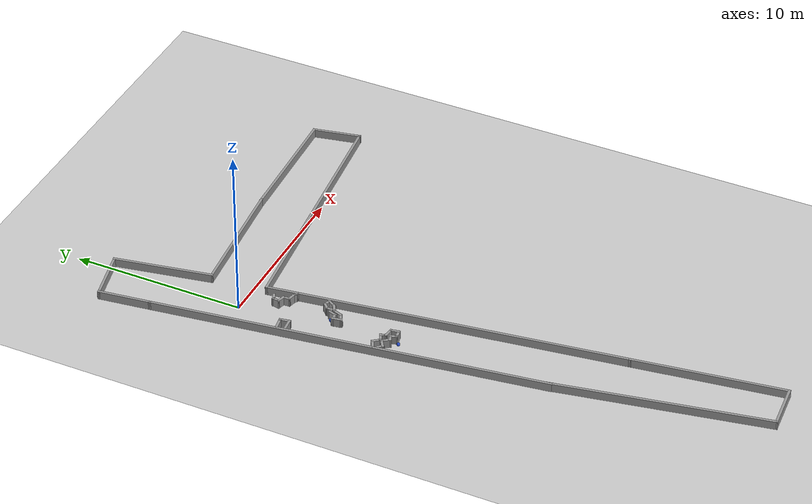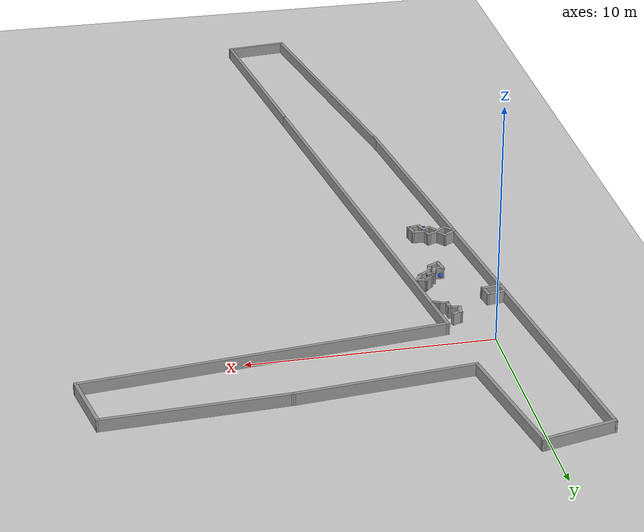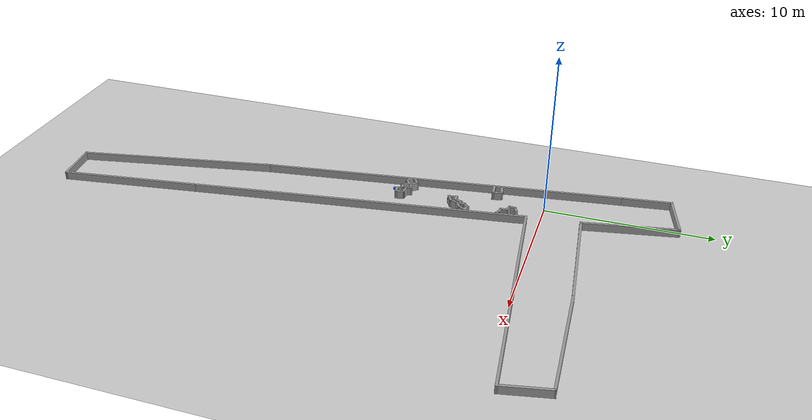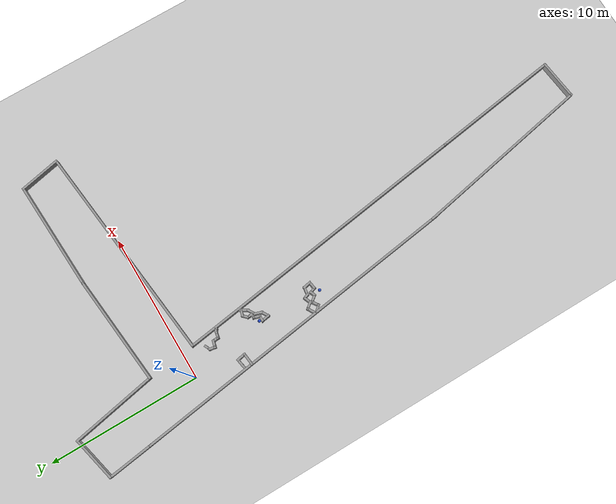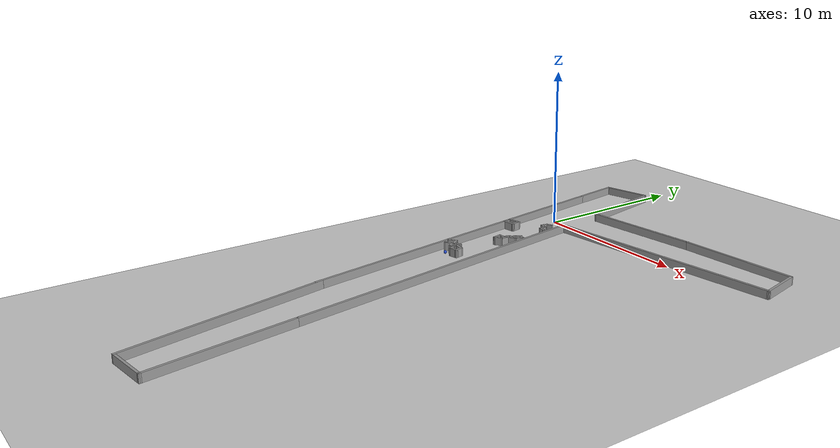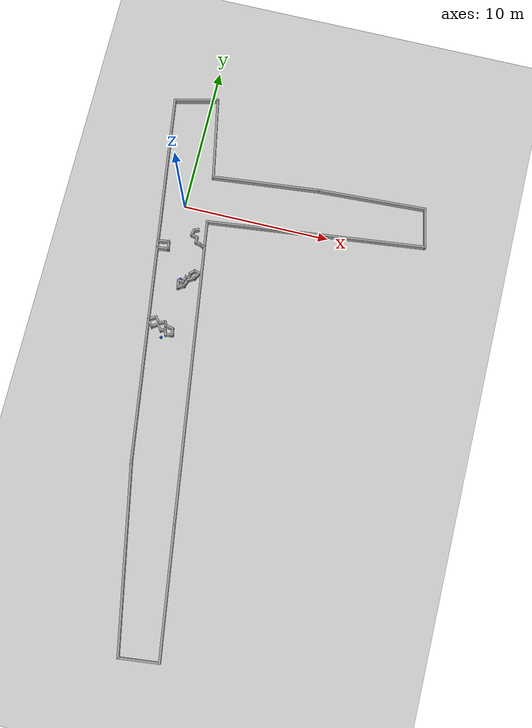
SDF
<?xml version="1.0"?>
<sdf version="1.4">
<world name="racecar_tunnel">

<light type="directional" name="sun">
    <cast_shadows>true</cast_shadows>
    <pose>0 0 10 0 0 0</pose>
    <diffuse>0.8 0.8 0.8 1</diffuse>
    <specular>0.2 0.2 0.2 1</specular>
    <attenuation>
        <range>1000</range>
        <constant>0.9</constant>
        <linear>0.01</linear>
        <quadratic>0.001</quadratic>
    </attenuation>
    <direction>-0.5 0.1 -0.9</direction>
    <spot>
        <inner_angle>0</inner_angle>
        <outer_angle>0</outer_angle>
        <falloff>0</falloff>
    </spot>
</light>

  <gui>
    <camera name='main'>
      <pose>0 0 10 0 1.571 0</pose>
    </camera>
  </gui>

  <model name="ground_plane">
    <static>true</static>
    <link name="link">
      <collision name="collision">
        <geometry>
          <plane>
            <normal>0 0 1</normal>
            <size>150 150</size>
          </plane>
        </geometry>
        <surface>
          <friction>
            <ode>
              <mu>100</mu>
              <mu2>50</mu2>
            </ode>
          </friction>
        </surface>
      </collision>
      <visual name="visual">
        <cast_shadows>false</cast_shadows>
        <geometry>
          <plane>
            <normal>0 0 1</normal>
            <size>150 150</size>
          </plane>
        </geometry>
        <material>Gazebo/Black</material>
      </visual>
    </link>
  </model>

  <model name="sphere_1">
    <static>true</static>
    <pose>1 -5.1 0.216 0 0 0</pose>
    <link name="link">
      <collision name="collision">
        <geometry>
          <sphere>
            <radius>0.1</radius>
          </sphere>
        </geometry>
      </collision>
      <visual name="visual">
        <cast_shadows>false</cast_shadows>
        <geometry>
          <sphere>
            <radius>0.1</radius>
          </sphere>
        </geometry>
        <material>
          <script>
            <uri>file://media/materials/scripts/gazebo.material</uri>
            <name>Gazebo/Blue</name>
          </script>
          <ambient>1 0 1 1</ambient>
          <diffuse>1 0 1 1</diffuse>
          <specular>1 0 1 1</specular>
        </material>
      </visual>
    </link>
  </model>

  <model name="sphere_2">
    <static>true</static>
    <pose>0.73 -9.3 0.216 0 0 0</pose>
    <link name="link">
      <collision name="collision">
        <geometry>
          <sphere>
            <radius>0.1</radius>
          </sphere>
        </geometry>
      </collision>
      <visual name="visual">
        <cast_shadows>false</cast_shadows>
        <geometry>
          <sphere>
            <radius>0.1</radius>
          </sphere>
        </geometry>
        <material>
          <script>
            <uri>file://media/materials/scripts/gazebo.material</uri>
            <name>Gazebo/Blue</name>
          </script>
          <ambient>1 0 1 1</ambient>
          <diffuse>1 0 1 1</diffuse>
          <specular>1 0 1 1</specular>
        </material>
      </visual>
    </link>
  </model>

  <include>
    <uri>model://tunnel_genie</uri>
    <pose>7 -11 0 0 0 0</pose>
  </include>

</world>
</sdf>

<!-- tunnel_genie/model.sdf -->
<sdf version='1.6'>
  <model name='tunnel_genie'>
    <pose frame=''>3.65079 -5.49106 0 0 -0 0</pose>
    <link name='Wall_1'>
      <collision name='Wall_1_Collision'>
        <geometry>
          <box>
            <size>22.7901 0.15 0.5</size>
          </box>
        </geometry>
        <pose frame=''>0 0 0.25 0 -0 0</pose>
      </collision>
      <visual name='Wall_1_Visual'>
        <pose frame=''>0 0 0.25 0 -0 0</pose>
        <geometry>
          <box>
            <size>22.7901 0.15 0.5</size>
          </box>
        </geometry>
        <material>
          <script>
            <uri>file://media/materials/scripts/gazebo.material</uri>
            <name>Gazebo/Grey</name>
          </script>
          <ambient>1 1 1 1</ambient>
        </material>
        <meta>
          <layer>0</layer>
        </meta>
      </visual>
      <pose frame=''>-7.58251 4.10765 0 0 -0 -1.43268</pose>
    </link>
    <link name='Wall_10'>
      <collision name='Wall_10_Collision'>
        <geometry>
          <box>
            <size>15.0098 0.15 0.5</size>
          </box>
        </geometry>
        <pose frame=''>0 0 0.25 0 -0 0</pose>
      </collision>
      <visual name='Wall_10_Visual'>
        <pose frame=''>0 0 0.25 0 -0 0</pose>
        <geometry>
          <box>
            <size>15.0098 0.15 0.5</size>
          </box>
        </geometry>
        <material>
          <script>
            <uri>file://media/materials/scripts/gazebo.material</uri>
            <name>Gazebo/Grey</name>
          </script>
          <ambient>1 1 1 1</ambient>
        </material>
        <meta>
          <layer>0</layer>
        </meta>
      </visual>
      <pose frame=''>2.15127 11.0356 0 0 -0 -3.02956</pose>
    </link>
    <link name='Wall_11'>
      <collision name='Wall_11_Collision'>
        <geometry>
          <box>
            <size>20.6591 0.15 0.5</size>
          </box>
        </geometry>
        <pose frame=''>0 0 0.25 0 -0 0</pose>
      </collision>
      <visual name='Wall_11_Visual'>
        <pose frame=''>0 0 0.25 0 -0 0</pose>
        <geometry>
          <box>
            <size>20.6591 0.15 0.5</size>
          </box>
        </geometry>
        <material>
          <script>
            <uri>file://media/materials/scripts/gazebo.material</uri>
            <name>Gazebo/Grey</name>
          </script>
          <ambient>1 1 1 1</ambient>
        </material>
        <meta>
          <layer>0</layer>
        </meta>
      </visual>
      <pose frame=''>-3.78617 0.052913 0 0 -0 -1.42932</pose>
    </link>
    <link name='Wall_12'>
      <collision name='Wall_12_Collision'>
        <geometry>
          <box>
            <size>8.80295 0.15 0.5</size>
          </box>
        </geometry>
        <pose frame=''>0 0 0.25 0 -0 0</pose>
      </collision>
      <visual name='Wall_12_Visual'>
        <pose frame=''>0 0 0.25 0 -0 0</pose>
        <geometry>
          <box>
            <size>8.80295 0.15 0.5</size>
          </box>
        </geometry>
        <material>
          <script>
            <uri>file://media/materials/scripts/gazebo.material</uri>
            <name>Gazebo/Grey</name>
          </script>
          <ambient>1 1 1 1</ambient>
        </material>
        <meta>
          <layer>0</layer>
        </meta>
      </visual>
      <pose frame=''>-1.72289 -14.3814 0 0 -0 -1.42761</pose>
    </link>
    <link name='Wall_13'>
      <collision name='Wall_13_Collision'>
        <geometry>
          <box>
            <size>2.78513 0.15 0.5</size>
          </box>
        </geometry>
        <pose frame=''>0 0 0.25 0 -0 0</pose>
      </collision>
      <visual name='Wall_13_Visual'>
        <pose frame=''>0 0 0.25 0 -0 0</pose>
        <geometry>
          <box>
            <size>2.78513 0.15 0.5</size>
          </box>
        </geometry>
        <material>
          <script>
            <uri>file://media/materials/scripts/gazebo.material</uri>
            <name>Gazebo/Grey</name>
          </script>
          <ambient>1 1 1 1</ambient>
        </material>
        <meta>
          <layer>0</layer>
        </meta>
      </visual>
      <pose frame=''>-2.41558 -18.804 0 0 -0 -3.03486</pose>
    </link>
    <link name='Wall_14'>
      <collision name='Wall_14_Collision'>
        <geometry>
          <box>
            <size>12.5378 0.15 0.5</size>
          </box>
        </geometry>
        <pose frame=''>0 0 0.25 0 -0 0</pose>
      </collision>
      <visual name='Wall_14_Visual'>
        <pose frame=''>0 0 0.25 0 -0 0</pose>
        <geometry>
          <box>
            <size>12.5378 0.15 0.5</size>
          </box>
        </geometry>
        <material>
          <script>
            <uri>file://media/materials/scripts/gazebo.material</uri>
            <name>Gazebo/Grey</name>
          </script>
          <ambient>1 1 1 1</ambient>
        </material>
        <meta>
          <layer>0</layer>
        </meta>
      </visual>
      <pose frame=''>-4.89535 -12.8619 0 0 -0 1.76079</pose>
    </link>
    <link name='Wall_16'>
      <collision name='Wall_16_Collision'>
        <geometry>
          <box>
            <size>0.5 0.15 0.5</size>
          </box>
        </geometry>
        <pose frame=''>0 0 0.25 0 -0 0</pose>
      </collision>
      <visual name='Wall_16_Visual'>
        <pose frame=''>0 0 0.25 0 -0 0</pose>
        <geometry>
          <box>
            <size>0.5 0.15 0.5</size>
          </box>
        </geometry>
        <material>
          <script>
            <uri>file://media/materials/scripts/gazebo.material</uri>
            <name>Gazebo/Grey</name>
          </script>
          <ambient>1 1 1 1</ambient>
        </material>
        <meta>
          <layer>0</layer>
        </meta>
      </visual>
      <pose frame=''>-5.03206 6.593 0 0 -0 2.87979</pose>
    </link>
    <link name='Wall_17'>
      <collision name='Wall_17_Collision'>
        <geometry>
          <box>
            <size>0.5 0.15 0.5</size>
          </box>
        </geometry>
        <pose frame=''>0 0 0.25 0 -0 0</pose>
      </collision>
      <visual name='Wall_17_Visual'>
        <pose frame=''>0 0 0.25 0 -0 0</pose>
        <geometry>
          <box>
            <size>0.5 0.15 0.5</size>
          </box>
        </geometry>
        <material>
          <script>
            <uri>file://media/materials/scripts/gazebo.material</uri>
            <name>Gazebo/Grey</name>
          </script>
          <ambient>1 1 1 1</ambient>
        </material>
        <meta>
          <layer>0</layer>
        </meta>
      </visual>
      <pose frame=''>-5.32484 6.51455 0 0 -0 -2.35619</pose>
    </link>
    <link name='Wall_18'>
      <collision name='Wall_18_Collision'>
        <geometry>
          <box>
            <size>0.25 0.15 0.5</size>
          </box>
        </geometry>
        <pose frame=''>0 0 0.25 0 -0 0</pose>
      </collision>
      <visual name='Wall_18_Visual'>
        <pose frame=''>0 0 0.25 0 -0 0</pose>
        <geometry>
          <box>
            <size>0.25 0.15 0.5</size>
          </box>
        </geometry>
        <material>
          <script>
            <uri>file://media/materials/scripts/gazebo.material</uri>
            <name>Gazebo/Grey</name>
          </script>
          <ambient>1 1 1 1</ambient>
        </material>
        <meta>
          <layer>0</layer>
        </meta>
      </visual>
      <pose frame=''>-5.44858 6.34081 0 0 -0 -1.5708</pose>
    </link>
    <link name='Wall_19'>
      <collision name='Wall_19_Collision'>
        <geometry>
          <box>
            <size>0.330317 0.15 0.5</size>
          </box>
        </geometry>
        <pose frame=''>0 0 0.25 0 -0 0</pose>
      </collision>
      <visual name='Wall_19_Visual'>
        <pose frame=''>0 0 0.25 0 -0 0</pose>
        <geometry>
          <box>
            <size>0.330317 0.15 0.5</size>
          </box>
        </geometry>
        <material>
          <script>
            <uri>file://media/materials/scripts/gazebo.material</uri>
            <name>Gazebo/Grey</name>
          </script>
          <ambient>1 1 1 1</ambient>
        </material>
        <meta>
          <layer>0</layer>
        </meta>
      </visual>
      <pose frame=''>-5.44014 6.20105 0 0 -0 -1.47701</pose>
    </link>
    <link name='Wall_20'>
      <collision name='Wall_20_Collision'>
        <geometry>
          <box>
            <size>0.374825 0.15 0.5</size>
          </box>
        </geometry>
        <pose frame=''>0 0 0.25 0 -0 0</pose>
      </collision>
      <visual name='Wall_20_Visual'>
        <pose frame=''>0 0 0.25 0 -0 0</pose>
        <geometry>
          <box>
            <size>0.374825 0.15 0.5</size>
          </box>
        </geometry>
        <material>
          <script>
            <uri>file://media/materials/scripts/gazebo.material</uri>
            <name>Gazebo/Grey</name>
          </script>
          <ambient>1 1 1 1</ambient>
        </material>
        <meta>
          <layer>0</layer>
        </meta>
      </visual>
      <pose frame=''>-5.54411 6.11128 0 0 -0 3.14159</pose>
    </link>
    <link name='Wall_21'>
      <collision name='Wall_21_Collision'>
        <geometry>
          <box>
            <size>0.55157 0.15 0.5</size>
          </box>
        </geometry>
        <pose frame=''>0 0 0.25 0 -0 0</pose>
      </collision>
      <visual name='Wall_21_Visual'>
        <pose frame=''>0 0 0.25 0 -0 0</pose>
        <geometry>
          <box>
            <size>0.55157 0.15 0.5</size>
          </box>
        </geometry>
        <material>
          <script>
            <uri>file://media/materials/scripts/gazebo.material</uri>
            <name>Gazebo/Grey</name>
          </script>
          <ambient>1 1 1 1</ambient>
        </material>
        <meta>
          <layer>0</layer>
        </meta>
      </visual>
      <pose frame=''>-5.71603 5.91952 0 0 -0 -1.87172</pose>
    </link>
    <link name='Wall_22'>
      <collision name='Wall_22_Collision'>
        <geometry>
          <box>
            <size>0.480625 0.15 0.5</size>
          </box>
        </geometry>
        <pose frame=''>0 0 0.25 0 -0 0</pose>
      </collision>
      <visual name='Wall_22_Visual'>
        <pose frame=''>0 0 0.25 0 -0 0</pose>
        <geometry>
          <box>
            <size>0.480625 0.15 0.5</size>
          </box>
        </geometry>
        <material>
          <script>
            <uri>file://media/materials/scripts/gazebo.material</uri>
            <name>Gazebo/Grey</name>
          </script>
          <ambient>1 1 1 1</ambient>
        </material>
        <meta>
          <layer>0</layer>
        </meta>
      </visual>
      <pose frame=''>-5.94086 5.72776 0 0 -0 3.14159</pose>
    </link>
    <link name='Wall_23'>
      <collision name='Wall_23_Collision'>
        <geometry>
          <box>
            <size>0.619627 0.15 0.5</size>
          </box>
        </geometry>
        <pose frame=''>0 0 0.25 0 -0 0</pose>
      </collision>
      <visual name='Wall_23_Visual'>
        <pose frame=''>0 0 0.25 0 -0 0</pose>
        <geometry>
          <box>
            <size>0.619627 0.15 0.5</size>
          </box>
        </geometry>
        <material>
          <script>
            <uri>file://media/materials/scripts/gazebo.material</uri>
            <name>Gazebo/Grey</name>
          </script>
          <ambient>1 1 1 1</ambient>
        </material>
        <meta>
          <layer>0</layer>
        </meta>
      </visual>
      <pose frame=''>-6.06649 5.49632 0 0 -0 -1.40102</pose>
    </link>
    <link name='Wall_24'>
      <collision name='Wall_24_Collision'>
        <geometry>
          <box>
            <size>0.594565 0.15 0.5</size>
          </box>
        </geometry>
        <pose frame=''>0 0 0.25 0 -0 0</pose>
      </collision>
      <visual name='Wall_24_Visual'>
        <pose frame=''>0 0 0.25 0 -0 0</pose>
        <geometry>
          <box>
            <size>0.594565 0.15 0.5</size>
          </box>
        </geometry>
        <material>
          <script>
            <uri>file://media/materials/scripts/gazebo.material</uri>
            <name>Gazebo/Grey</name>
          </script>
          <ambient>1 1 1 1</ambient>
        </material>
        <meta>
          <layer>0</layer>
        </meta>
      </visual>
      <pose frame=''>-5.83506 5.3773 0 0 -0 0.530216</pose>
    </link>
    <link name='Wall_25'>
      <collision name='Wall_25_Collision'>
        <geometry>
          <box>
            <size>0.597506 0.15 0.5</size>
          </box>
        </geometry>
        <pose frame=''>0 0 0.25 0 -0 0</pose>
      </collision>
      <visual name='Wall_25_Visual'>
        <pose frame=''>0 0 0.25 0 -0 0</pose>
        <geometry>
          <box>
            <size>0.597506 0.15 0.5</size>
          </box>
        </geometry>
        <material>
          <script>
            <uri>file://media/materials/scripts/gazebo.material</uri>
            <name>Gazebo/Grey</name>
          </script>
          <ambient>1 1 1 1</ambient>
        </material>
        <meta>
          <layer>0</layer>
        </meta>
      </visual>
      <pose frame=''>-5.57056 5.70131 0 0 -0 1.2397</pose>
    </link>
    <link name='Wall_26'>
      <collision name='Wall_26_Collision'>
        <geometry>
          <box>
            <size>0.630852 0.15 0.5</size>
          </box>
        </geometry>
        <pose frame=''>0 0 0.25 0 -0 0</pose>
      </collision>
      <visual name='Wall_26_Visual'>
        <pose frame=''>0 0 0.25 0 -0 0</pose>
        <geometry>
          <box>
            <size>0.630852 0.15 0.5</size>
          </box>
        </geometry>
        <material>
          <script>
            <uri>file://media/materials/scripts/gazebo.material</uri>
            <name>Gazebo/Grey</name>
          </script>
          <ambient>1 1 1 1</ambient>
        </material>
        <meta>
          <layer>0</layer>
        </meta>
      </visual>
      <pose frame=''>-5.29283 6.03855 0 0 -0 0.549853</pose>
    </link>
    <link name='Wall_27'>
      <collision name='Wall_27_Collision'>
        <geometry>
          <box>
            <size>0.612686 0.15 0.5</size>
          </box>
        </geometry>
        <pose frame=''>0 0 0.25 0 -0 0</pose>
      </collision>
      <visual name='Wall_27_Visual'>
        <pose frame=''>0 0 0.25 0 -0 0</pose>
        <geometry>
          <box>
            <size>0.612686 0.15 0.5</size>
          </box>
        </geometry>
        <material>
          <script>
            <uri>file://media/materials/scripts/gazebo.material</uri>
            <name>Gazebo/Grey</name>
          </script>
          <ambient>1 1 1 1</ambient>
        </material>
        <meta>
          <layer>0</layer>
        </meta>
      </visual>
      <pose frame=''>-4.96882 6.36256 0 0 -0 1.03038</pose>
    </link>
    <link name='Wall_29'>
      <collision name='Wall_29_Collision'>
        <geometry>
          <box>
            <size>0.894839 0.15 0.5</size>
          </box>
        </geometry>
        <pose frame=''>0 0 0.25 0 -0 0</pose>
      </collision>
      <visual name='Wall_29_Visual'>
        <pose frame=''>0 0 0.25 0 -0 0</pose>
        <geometry>
          <box>
            <size>0.894839 0.15 0.5</size>
          </box>
        </geometry>
        <material>
          <script>
            <uri>file://media/materials/scripts/gazebo.material</uri>
            <name>Gazebo/Grey</name>
          </script>
          <ambient>1 1 1 1</ambient>
        </material>
        <meta>
          <layer>0</layer>
        </meta>
      </visual>
      <pose frame=''>-7.69317 7.68506 0 0 -0 0.106736</pose>
    </link>
    <link name='Wall_3'>
      <collision name='Wall_3_Collision'>
        <geometry>
          <box>
            <size>3.12202 0.15 0.5</size>
          </box>
        </geometry>
        <pose frame=''>0 0 0.25 0 -0 0</pose>
      </collision>
      <visual name='Wall_3_Visual'>
        <pose frame=''>0 0 0.25 0 -0 0</pose>
        <geometry>
          <box>
            <size>3.12202 0.15 0.5</size>
          </box>
        </geometry>
        <material>
          <script>
            <uri>file://media/materials/scripts/gazebo.material</uri>
            <name>Gazebo/Grey</name>
          </script>
          <ambient>1 1 1 1</ambient>
        </material>
        <meta>
          <layer>0</layer>
        </meta>
      </visual>
      <pose frame=''>-9.34004 16.7925 0 0 -0 1.7051</pose>
    </link>
    <link name='Wall_30'>
      <collision name='Wall_30_Collision'>
        <geometry>
          <box>
            <size>0.674017 0.15 0.5</size>
          </box>
        </geometry>
        <pose frame=''>0 0 0.25 0 -0 0</pose>
      </collision>
      <visual name='Wall_30_Visual'>
        <pose frame=''>0 0 0.25 0 -0 0</pose>
        <geometry>
          <box>
            <size>0.674017 0.15 0.5</size>
          </box>
        </geometry>
        <material>
          <script>
            <uri>file://media/materials/scripts/gazebo.material</uri>
            <name>Gazebo/Grey</name>
          </script>
          <ambient>1 1 1 1</ambient>
        </material>
        <meta>
          <layer>0</layer>
        </meta>
      </visual>
      <pose frame=''>-7.36916 7.98262 0 0 -0 1.74839</pose>
    </link>
    <link name='Wall_31'>
      <collision name='Wall_31_Collision'>
        <geometry>
          <box>
            <size>0.860959 0.15 0.5</size>
          </box>
        </geometry>
        <pose frame=''>0 0 0.25 0 -0 0</pose>
      </collision>
      <visual name='Wall_31_Visual'>
        <pose frame=''>0 0 0.25 0 -0 0</pose>
        <geometry>
          <box>
            <size>0.860959 0.15 0.5</size>
          </box>
        </geometry>
        <material>
          <script>
            <uri>file://media/materials/scripts/gazebo.material</uri>
            <name>Gazebo/Grey</name>
          </script>
          <ambient>1 1 1 1</ambient>
        </material>
        <meta>
          <layer>0</layer>
        </meta>
      </visual>
      <pose frame=''>-7.76591 8.181 0 0 -0 -2.97339</pose>
    </link>
    <link name='Wall_33'>
      <collision name='Wall_33_Collision'>
        <geometry>
          <box>
            <size>0.456361 0.15 0.5</size>
          </box>
        </geometry>
        <pose frame=''>0 0 0.25 0 -0 0</pose>
      </collision>
      <visual name='Wall_33_Visual'>
        <pose frame=''>0 0 0.25 0 -0 0</pose>
        <geometry>
          <box>
            <size>0.456361 0.15 0.5</size>
          </box>
        </geometry>
        <material>
          <script>
            <uri>file://media/materials/scripts/gazebo.material</uri>
            <name>Gazebo/Grey</name>
          </script>
          <ambient>1 1 1 1</ambient>
        </material>
        <meta>
          <layer>0</layer>
        </meta>
      </visual>
      <pose frame=''>-5.81196 9.46518 0 0 -0 -2.7367</pose>
    </link>
    <link name='Wall_34'>
      <collision name='Wall_34_Collision'>
        <geometry>
          <box>
            <size>0.497214 0.15 0.5</size>
          </box>
        </geometry>
        <pose frame=''>0 0 0.25 0 -0 0</pose>
      </collision>
      <visual name='Wall_34_Visual'>
        <pose frame=''>0 0 0.25 0 -0 0</pose>
        <geometry>
          <box>
            <size>0.497214 0.15 0.5</size>
          </box>
        </geometry>
        <material>
          <script>
            <uri>file://media/materials/scripts/gazebo.material</uri>
            <name>Gazebo/Grey</name>
          </script>
          <ambient>1 1 1 1</ambient>
        </material>
        <meta>
          <layer>0</layer>
        </meta>
      </visual>
      <pose frame=''>-5.98292 9.23387 0 0 -0 -1.74547</pose>
    </link>
    <link name='Wall_35'>
      <collision name='Wall_35_Collision'>
        <geometry>
          <box>
            <size>0.545169 0.15 0.5</size>
          </box>
        </geometry>
        <pose frame=''>0 0 0.25 0 -0 0</pose>
      </collision>
      <visual name='Wall_35_Visual'>
        <pose frame=''>0 0 0.25 0 -0 0</pose>
        <geometry>
          <box>
            <size>0.545169 0.15 0.5</size>
          </box>
        </geometry>
        <material>
          <script>
            <uri>file://media/materials/scripts/gazebo.material</uri>
            <name>Gazebo/Grey</name>
          </script>
          <ambient>1 1 1 1</ambient>
        </material>
        <meta>
          <layer>0</layer>
        </meta>
      </visual>
      <pose frame=''>-5.82201 9.01262 0 0 -0 -0.257324</pose>
    </link>
    <link name='Wall_36'>
      <collision name='Wall_36_Collision'>
        <geometry>
          <box>
            <size>0.492522 0.15 0.5</size>
          </box>
        </geometry>
        <pose frame=''>0 0 0.25 0 -0 0</pose>
      </collision>
      <visual name='Wall_36_Visual'>
        <pose frame=''>0 0 0.25 0 -0 0</pose>
        <geometry>
          <box>
            <size>0.492522 0.15 0.5</size>
          </box>
        </geometry>
        <material>
          <script>
            <uri>file://media/materials/scripts/gazebo.material</uri>
            <name>Gazebo/Grey</name>
          </script>
          <ambient>1 1 1 1</ambient>
        </material>
        <meta>
          <layer>0</layer>
        </meta>
      </visual>
      <pose frame=''>-5.62088 8.79138 0 0 -0 -1.51204</pose>
    </link>
    <link name='Wall_37'>
      <collision name='Wall_37_Collision'>
        <geometry>
          <box>
            <size>0.501268 0.15 0.5</size>
          </box>
        </geometry>
        <pose frame=''>0 0 0.25 0 -0 0</pose>
      </collision>
      <visual name='Wall_37_Visual'>
        <pose frame=''>0 0 0.25 0 -0 0</pose>
        <geometry>
          <box>
            <size>0.501268 0.15 0.5</size>
          </box>
        </geometry>
        <material>
          <script>
            <uri>file://media/materials/scripts/gazebo.material</uri>
            <name>Gazebo/Grey</name>
          </script>
          <ambient>1 1 1 1</ambient>
        </material>
        <meta>
          <layer>0</layer>
        </meta>
      </visual>
      <pose frame=''>-5.43985 8.58018 0 0 -0 -0.231091</pose>
    </link>
    <link name='Wall_38'>
      <collision name='Wall_38_Collision'>
        <geometry>
          <box>
            <size>0.374877 0.15 0.5</size>
          </box>
        </geometry>
        <pose frame=''>0 0 0.25 0 -0 0</pose>
      </collision>
      <visual name='Wall_38_Visual'>
        <pose frame=''>0 0 0.25 0 -0 0</pose>
        <geometry>
          <box>
            <size>0.374877 0.15 0.5</size>
          </box>
        </geometry>
        <material>
          <script>
            <uri>file://media/materials/scripts/gazebo.material</uri>
            <name>Gazebo/Grey</name>
          </script>
          <ambient>1 1 1 1</ambient>
        </material>
        <meta>
          <layer>0</layer>
        </meta>
      </visual>
      <pose frame=''>-5.16832 8.48967 0 0 -0 -0.463648</pose>
    </link>
    <link name='Wall_39'>
      <collision name='Wall_39_Collision'>
        <geometry>
          <box>
            <size>0.16 0.15 0.5</size>
          </box>
        </geometry>
        <pose frame=''>0 0 0.25 0 -0 0</pose>
      </collision>
      <visual name='Wall_39_Visual'>
        <pose frame=''>0 0 0.25 0 -0 0</pose>
        <geometry>
          <box>
            <size>0.16 0.15 0.5</size>
          </box>
        </geometry>
        <material>
          <script>
            <uri>file://media/materials/scripts/gazebo.material</uri>
            <name>Gazebo/Grey</name>
          </script>
          <ambient>1 1 1 1</ambient>
        </material>
        <meta>
          <layer>0</layer>
        </meta>
      </visual>
      <pose frame=''>-5.06275 8.43939 0 0 -0 0</pose>
    </link>
    <link name='Wall_4'>
      <collision name='Wall_4_Collision'>
        <geometry>
          <box>
            <size>0.16 0.15 0.5</size>
          </box>
        </geometry>
        <pose frame=''>0 0 0.25 0 -0 0</pose>
      </collision>
      <visual name='Wall_4_Visual'>
        <pose frame=''>0 0 0.25 0 -0 0</pose>
        <geometry>
          <box>
            <size>0.16 0.15 0.5</size>
          </box>
        </geometry>
        <material>
          <script>
            <uri>file://media/materials/scripts/gazebo.material</uri>
            <name>Gazebo/Grey</name>
          </script>
          <ambient>1 1 1 1</ambient>
        </material>
        <meta>
          <layer>0</layer>
        </meta>
      </visual>
      <pose frame=''>-9.53402 18.2652 0 0 -0 0</pose>
    </link>
    <link name='Wall_41'>
      <collision name='Wall_41_Collision'>
        <geometry>
          <box>
            <size>0.657821 0.15 0.5</size>
          </box>
        </geometry>
        <pose frame=''>0 0 0.25 0 -0 0</pose>
      </collision>
      <visual name='Wall_41_Visual'>
        <pose frame=''>0 0 0.25 0 -0 0</pose>
        <geometry>
          <box>
            <size>0.657821 0.15 0.5</size>
          </box>
        </geometry>
        <material>
          <script>
            <uri>file://media/materials/scripts/gazebo.material</uri>
            <name>Gazebo/Grey</name>
          </script>
          <ambient>1 1 1 1</ambient>
        </material>
        <meta>
          <layer>0</layer>
        </meta>
      </visual>
      <pose frame=''>-7.1315 2.82366 0 0 -0 0.524796</pose>
    </link>
    <link name='Wall_42'>
      <collision name='Wall_42_Collision'>
        <geometry>
          <box>
            <size>0.594324 0.15 0.5</size>
          </box>
        </geometry>
        <pose frame=''>0 0 0.25 0 -0 0</pose>
      </collision>
      <visual name='Wall_42_Visual'>
        <pose frame=''>0 0 0.25 0 -0 0</pose>
        <geometry>
          <box>
            <size>0.594324 0.15 0.5</size>
          </box>
        </geometry>
        <material>
          <script>
            <uri>file://media/materials/scripts/gazebo.material</uri>
            <name>Gazebo/Grey</name>
          </script>
          <ambient>1 1 1 1</ambient>
        </material>
        <meta>
          <layer>0</layer>
        </meta>
      </visual>
      <pose frame=''>-6.77298 2.7774 0 0 -0 -0.896055</pose>
    </link>
    <link name='Wall_43'>
      <collision name='Wall_43_Collision'>
        <geometry>
          <box>
            <size>0.575251 0.15 0.5</size>
          </box>
        </geometry>
        <pose frame=''>0 0 0.25 0 -0 0</pose>
      </collision>
      <visual name='Wall_43_Visual'>
        <pose frame=''>0 0 0.25 0 -0 0</pose>
        <geometry>
          <box>
            <size>0.575251 0.15 0.5</size>
          </box>
        </geometry>
        <material>
          <script>
            <uri>file://media/materials/scripts/gazebo.material</uri>
            <name>Gazebo/Grey</name>
          </script>
          <ambient>1 1 1 1</ambient>
        </material>
        <meta>
          <layer>0</layer>
        </meta>
      </visual>
      <pose frame=''>-6.43759 2.68487 0 0 -0 0.390607</pose>
    </link>
    <link name='Wall_44'>
      <collision name='Wall_44_Collision'>
        <geometry>
          <box>
            <size>0.420737 0.15 0.5</size>
          </box>
        </geometry>
        <pose frame=''>0 0 0.25 0 -0 0</pose>
      </collision>
      <visual name='Wall_44_Visual'>
        <pose frame=''>0 0 0.25 0 -0 0</pose>
        <geometry>
          <box>
            <size>0.420737 0.15 0.5</size>
          </box>
        </geometry>
        <material>
          <script>
            <uri>file://media/materials/scripts/gazebo.material</uri>
            <name>Gazebo/Grey</name>
          </script>
          <ambient>1 1 1 1</ambient>
        </material>
        <meta>
          <layer>0</layer>
        </meta>
      </visual>
      <pose frame=''>-6.19472 2.63861 0 0 -0 -1.22202</pose>
    </link>
    <link name='Wall_45'>
      <collision name='Wall_45_Collision'>
        <geometry>
          <box>
            <size>0.640674 0.15 0.5</size>
          </box>
        </geometry>
        <pose frame=''>0 0 0.25 0 -0 0</pose>
      </collision>
      <visual name='Wall_45_Visual'>
        <pose frame=''>0 0 0.25 0 -0 0</pose>
        <geometry>
          <box>
            <size>0.640674 0.15 0.5</size>
          </box>
        </geometry>
        <material>
          <script>
            <uri>file://media/materials/scripts/gazebo.material</uri>
            <name>Gazebo/Grey</name>
          </script>
          <ambient>1 1 1 1</ambient>
        </material>
        <meta>
          <layer>0</layer>
        </meta>
      </visual>
      <pose frame=''>-5.90558 2.4767 0 0 -0 -0.141897</pose>
    </link>
    <link name='Wall_46'>
      <collision name='Wall_46_Collision'>
        <geometry>
          <box>
            <size>0.599115 0.15 0.5</size>
          </box>
        </geometry>
        <pose frame=''>0 0 0.25 0 -0 0</pose>
      </collision>
      <visual name='Wall_46_Visual'>
        <pose frame=''>0 0 0.25 0 -0 0</pose>
        <geometry>
          <box>
            <size>0.599115 0.15 0.5</size>
          </box>
        </geometry>
        <material>
          <script>
            <uri>file://media/materials/scripts/gazebo.material</uri>
            <name>Gazebo/Grey</name>
          </script>
          <ambient>1 1 1 1</ambient>
        </material>
        <meta>
          <layer>0</layer>
        </meta>
      </visual>
      <pose frame=''>-5.61645 2.22226 0 0 -0 -1.3633</pose>
    </link>
    <link name='Wall_47'>
      <collision name='Wall_47_Collision'>
        <geometry>
          <box>
            <size>0.594926 0.15 0.5</size>
          </box>
        </geometry>
        <pose frame=''>0 0 0.25 0 -0 0</pose>
      </collision>
      <visual name='Wall_47_Visual'>
        <pose frame=''>0 0 0.25 0 -0 0</pose>
        <geometry>
          <box>
            <size>0.594926 0.15 0.5</size>
          </box>
        </geometry>
        <material>
          <script>
            <uri>file://media/materials/scripts/gazebo.material</uri>
            <name>Gazebo/Grey</name>
          </script>
          <ambient>1 1 1 1</ambient>
        </material>
        <meta>
          <layer>0</layer>
        </meta>
      </visual>
      <pose frame=''>-5.78993 1.96782 0 0 -0 -2.98499</pose>
    </link>
    <link name='Wall_48'>
      <collision name='Wall_48_Collision'>
        <geometry>
          <box>
            <size>0.493861 0.15 0.5</size>
          </box>
        </geometry>
        <pose frame=''>0 0 0.25 0 -0 0</pose>
      </collision>
      <visual name='Wall_48_Visual'>
        <pose frame=''>0 0 0.25 0 -0 0</pose>
        <geometry>
          <box>
            <size>0.493861 0.15 0.5</size>
          </box>
        </geometry>
        <material>
          <script>
            <uri>file://media/materials/scripts/gazebo.material</uri>
            <name>Gazebo/Grey</name>
          </script>
          <ambient>1 1 1 1</ambient>
        </material>
        <meta>
          <layer>0</layer>
        </meta>
      </visual>
      <pose frame=''>-6.0675 2.09504 0 0 -0 1.91382</pose>
    </link>
    <link name='Wall_49'>
      <collision name='Wall_49_Collision'>
        <geometry>
          <box>
            <size>0.450698 0.15 0.5</size>
          </box>
        </geometry>
        <pose frame=''>0 0 0.25 0 -0 0</pose>
      </collision>
      <visual name='Wall_49_Visual'>
        <pose frame=''>0 0 0.25 0 -0 0</pose>
        <geometry>
          <box>
            <size>0.450698 0.15 0.5</size>
          </box>
        </geometry>
        <material>
          <script>
            <uri>file://media/materials/scripts/gazebo.material</uri>
            <name>Gazebo/Grey</name>
          </script>
          <ambient>1 1 1 1</ambient>
        </material>
        <meta>
          <layer>0</layer>
        </meta>
      </visual>
      <pose frame=''>-6.26411 2.19913 0 0 -0 -2.7468</pose>
    </link>
    <link name='Wall_5'>
      <collision name='Wall_5_Collision'>
        <geometry>
          <box>
            <size>3.11022 0.15 0.5</size>
          </box>
        </geometry>
        <pose frame=''>0 0 0.25 0 -0 0</pose>
      </collision>
      <visual name='Wall_5_Visual'>
        <pose frame=''>0 0 0.25 0 -0 0</pose>
        <geometry>
          <box>
            <size>3.11022 0.15 0.5</size>
          </box>
        </geometry>
        <material>
          <script>
            <uri>file://media/materials/scripts/gazebo.material</uri>
            <name>Gazebo/Grey</name>
          </script>
          <ambient>1 1 1 1</ambient>
        </material>
        <meta>
          <layer>0</layer>
        </meta>
      </visual>
      <pose frame=''>-8.08812 18.6036 0 0 -0 0.230674</pose>
    </link>
    <link name='Wall_50'>
      <collision name='Wall_50_Collision'>
        <geometry>
          <box>
            <size>0.612612 0.15 0.5</size>
          </box>
        </geometry>
        <pose frame=''>0 0 0.25 0 -0 0</pose>
      </collision>
      <visual name='Wall_50_Visual'>
        <pose frame=''>0 0 0.25 0 -0 0</pose>
        <geometry>
          <box>
            <size>0.612612 0.15 0.5</size>
          </box>
        </geometry>
        <material>
          <script>
            <uri>file://media/materials/scripts/gazebo.material</uri>
            <name>Gazebo/Grey</name>
          </script>
          <ambient>1 1 1 1</ambient>
        </material>
        <meta>
          <layer>0</layer>
        </meta>
      </visual>
      <pose frame=''>-6.54167 2.32635 0 0 -0 2.2143</pose>
    </link>
    <link name='Wall_51'>
      <collision name='Wall_51_Collision'>
        <geometry>
          <box>
            <size>0.599115 0.15 0.5</size>
          </box>
        </geometry>
        <pose frame=''>0 0 0.25 0 -0 0</pose>
      </collision>
      <visual name='Wall_51_Visual'>
        <pose frame=''>0 0 0.25 0 -0 0</pose>
        <geometry>
          <box>
            <size>0.599115 0.15 0.5</size>
          </box>
        </geometry>
        <material>
          <script>
            <uri>file://media/materials/scripts/gazebo.material</uri>
            <name>Gazebo/Grey</name>
          </script>
          <ambient>1 1 1 1</ambient>
        </material>
        <meta>
          <layer>0</layer>
        </meta>
      </visual>
      <pose frame=''>-6.8655 2.38418 0 0 -0 -2.53931</pose>
    </link>
    <link name='Wall_52'>
      <collision name='Wall_52_Collision'>
        <geometry>
          <box>
            <size>0.46119 0.15 0.5</size>
          </box>
        </geometry>
        <pose frame=''>0 0 0.25 0 -0 0</pose>
      </collision>
      <visual name='Wall_52_Visual'>
        <pose frame=''>0 0 0.25 0 -0 0</pose>
        <geometry>
          <box>
            <size>0.46119 0.15 0.5</size>
          </box>
        </geometry>
        <material>
          <script>
            <uri>file://media/materials/scripts/gazebo.material</uri>
            <name>Gazebo/Grey</name>
          </script>
          <ambient>1 1 1 1</ambient>
        </material>
        <meta>
          <layer>0</layer>
        </meta>
      </visual>
      <pose frame=''>-7.15463 2.37261 0 0 -0 2.30361</pose>
    </link>
    <link name='Wall_6'>
      <collision name='Wall_6_Collision'>
        <geometry>
          <box>
            <size>5.78543 0.15 0.5</size>
          </box>
        </geometry>
        <pose frame=''>0 0 0.25 0 -0 0</pose>
      </collision>
      <visual name='Wall_6_Visual'>
        <pose frame=''>0 0 0.25 0 -0 0</pose>
        <geometry>
          <box>
            <size>5.78543 0.15 0.5</size>
          </box>
        </geometry>
        <material>
          <script>
            <uri>file://media/materials/scripts/gazebo.material</uri>
            <name>Gazebo/Grey</name>
          </script>
          <ambient>1 1 1 1</ambient>
        </material>
        <meta>
          <layer>0</layer>
        </meta>
      </visual>
      <pose frame=''>-6.12423 16.1732 0 0 -0 -1.38411</pose>
    </link>
    <link name='Wall_7'>
      <collision name='Wall_7_Collision'>
        <geometry>
          <box>
            <size>7.44773 0.15 0.5</size>
          </box>
        </geometry>
        <pose frame=''>0 0 0.25 0 -0 0</pose>
      </collision>
      <visual name='Wall_7_Visual'>
        <pose frame=''>0 0 0.25 0 -0 0</pose>
        <geometry>
          <box>
            <size>7.44773 0.15 0.5</size>
          </box>
        </geometry>
        <material>
          <script>
            <uri>file://media/materials/scripts/gazebo.material</uri>
            <name>Gazebo/Grey</name>
          </script>
          <ambient>1 1 1 1</ambient>
        </material>
        <meta>
          <layer>0</layer>
        </meta>
      </visual>
      <pose frame=''>-1.9711 13.7736 0 0 -0 0.101347</pose>
    </link>
    <link name='Wall_8'>
      <collision name='Wall_8_Collision'>
        <geometry>
          <box>
            <size>7.48112 0.15 0.5</size>
          </box>
        </geometry>
        <pose frame=''>0 0 0.25 0 -0 0</pose>
      </collision>
      <visual name='Wall_8_Visual'>
        <pose frame=''>0 0 0.25 0 -0 0</pose>
        <geometry>
          <box>
            <size>7.48112 0.15 0.5</size>
          </box>
        </geometry>
        <material>
          <script>
            <uri>file://media/materials/scripts/gazebo.material</uri>
            <name>Gazebo/Grey</name>
          </script>
          <ambient>1 1 1 1</ambient>
        </material>
        <meta>
          <layer>0</layer>
        </meta>
      </visual>
      <pose frame=''>5.31996 14.3274 0 0 -0 0.050378</pose>
    </link>
    <link name='Wall_9'>
      <collision name='Wall_9_Collision'>
        <geometry>
          <box>
            <size>2.85303 0.15 0.5</size>
          </box>
        </geometry>
        <pose frame=''>0 0 0.25 0 -0 0</pose>
      </collision>
      <visual name='Wall_9_Visual'>
        <pose frame=''>0 0 0.25 0 -0 0</pose>
        <geometry>
          <box>
            <size>2.85303 0.15 0.5</size>
          </box>
        </geometry>
        <material>
          <script>
            <uri>file://media/materials/scripts/gazebo.material</uri>
            <name>Gazebo/Grey</name>
          </script>
          <ambient>1 1 1 1</ambient>
        </material>
        <meta>
          <layer>0</layer>
        </meta>
      </visual>
      <pose frame=''>9.25774 13.1891 0 0 -0 -1.36447</pose>
    </link>
    <static>1</static>
  </model>
</sdf>
